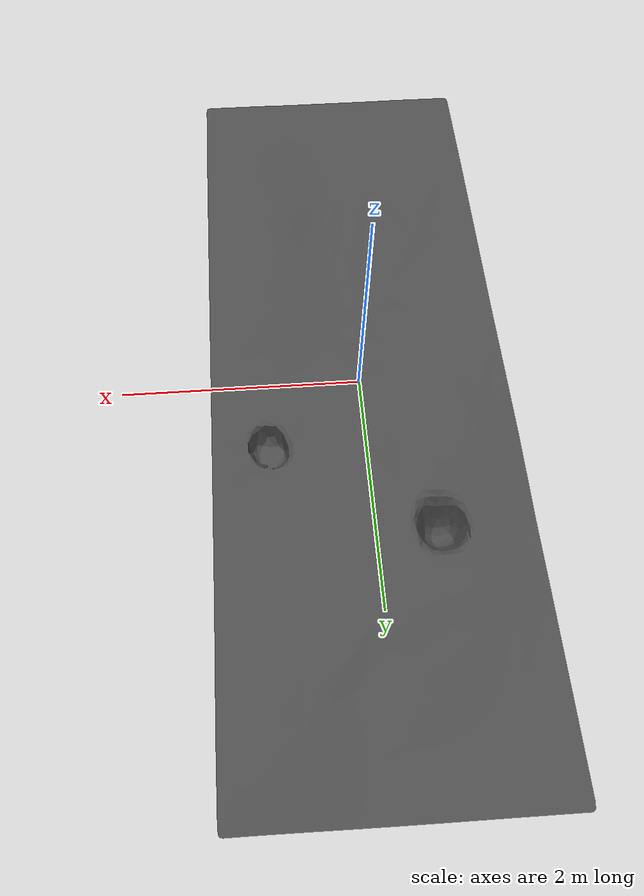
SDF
<?xml version='1.0'?>
<sdf version='1.6'>
  <model name='ground_bumpy_holes'>
    <link name='link_0'>
      <pose frame=''>0 0 0 0 -0 0</pose>
      <gravity>0</gravity>
      <self_collide>0</self_collide>
      <kinematic>0</kinematic>
      <enable_wind>0</enable_wind>
      <visual name='visual'>
        <pose frame=''>0 0 0 0 -0 0</pose>
        <geometry>
          <mesh>
            <uri>model://ground_bumpy_holes/meshes/ground_bumpy_holes.dae</uri>
          </mesh>
        </geometry>
        <material>
          <ambient>0.3 0.3 0.3 1</ambient>
          <emissive>0.3 0.3 0.3 1</emissive>
          <script>
            <uri>model://ground_bumpy_holes/materials/scripts</uri>
	          <name>regolith</name>
          </script>
        </material>
        <transparency>0</transparency>
        <cast_shadows>1</cast_shadows>
      </visual>
      <collision name='collision'>
        <laser_retro>0</laser_retro>
        <max_contacts>10</max_contacts>
        <pose frame=''>0 0 0 0 -0 0</pose>
        <geometry>
          <mesh>
            <uri>model://ground_bumpy_holes/meshes/ground_bumpy_holes.dae</uri>
          </mesh>
        </geometry>
      </collision>
    </link>
    <static>1</static>
    <allow_auto_disable>1</allow_auto_disable>
  </model>
</sdf>
